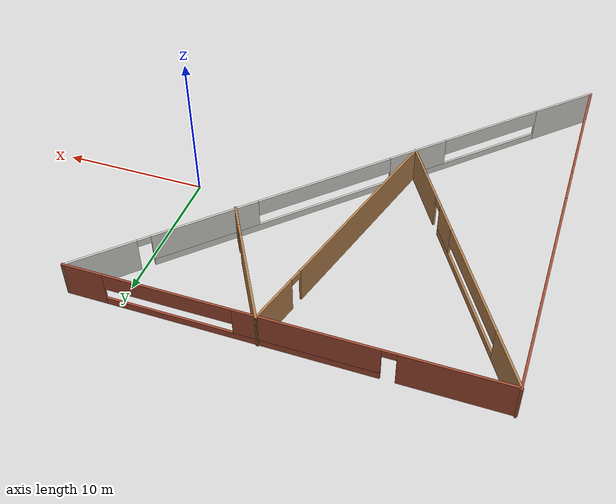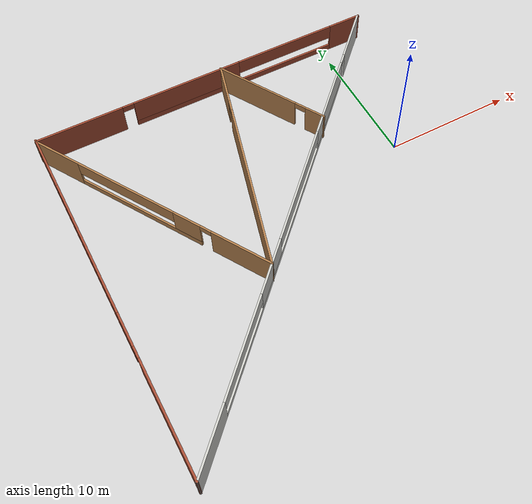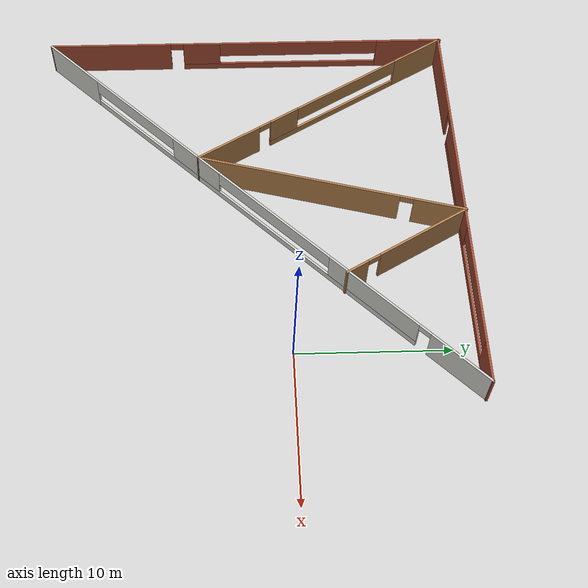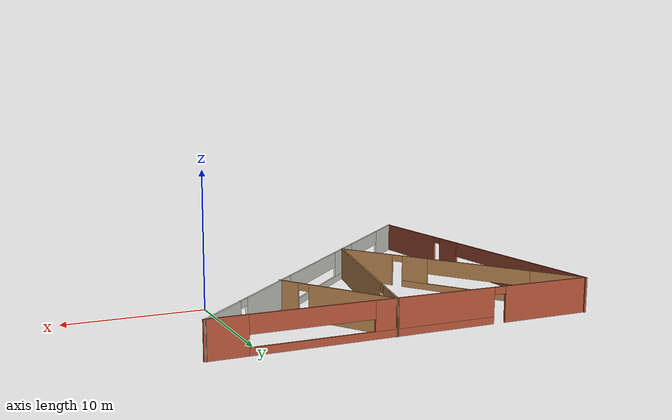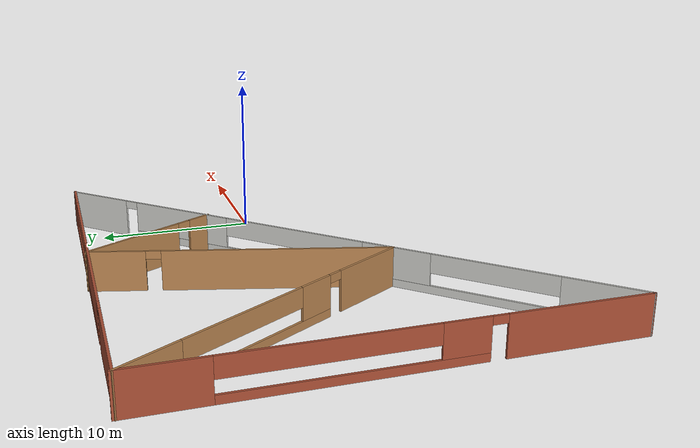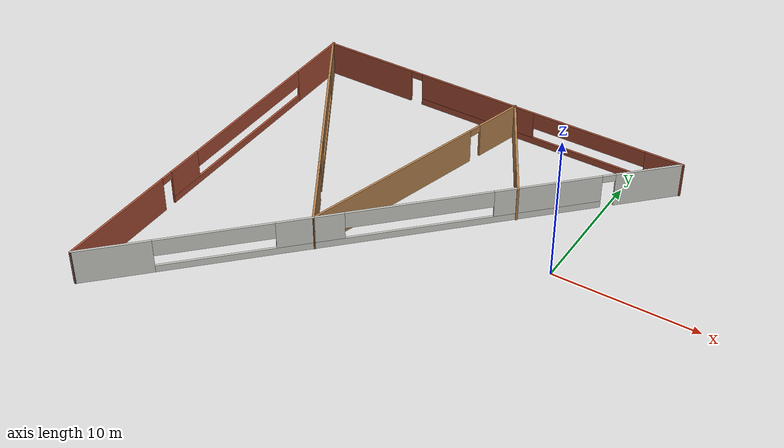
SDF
<?xml version='1.0'?>
<sdf version='1.6'>
  <model name='MyWorld2'>
    <pose frame=''>-10.3803 -2.41529 0 0 -0 0</pose>
    <link name='Wall_0'>
      <pose frame=''>-13.807 0.013017 0 0 0 -1.5708</pose>
      <visual name='Wall_0_Visual_0'>
        <pose frame=''>-11.7947 0 1.25 0 -0 0</pose>
        <geometry>
          <box>
            <size>4.66052 0.15 2.5</size>
          </box>
        </geometry>
        <material>
          <script>
            <uri>file://media/materials/scripts/gazebo.material</uri>
            <name>Gazebo/Bricks</name>
          </script>
          <ambient>1 1 1 1</ambient>
        </material>
        <meta>
          <layer>0</layer>
        </meta>
      </visual>
      <collision name='Wall_0_Collision_0'>
        <geometry>
          <box>
            <size>4.66052 0.15 2.5</size>
          </box>
        </geometry>
        <pose frame=''>-11.7947 0 1.25 0 -0 0</pose>
      </collision>
      <visual name='Wall_0_Visual_1'>
        <pose frame=''>9.80218 0 1.25 0 -0 0</pose>
        <geometry>
          <box>
            <size>8.64565 0.15 2.5</size>
          </box>
        </geometry>
        <material>
          <script>
            <uri>file://media/materials/scripts/gazebo.material</uri>
            <name>Gazebo/Bricks</name>
          </script>
          <ambient>1 1 1 1</ambient>
        </material>
        <meta>
          <layer>0</layer>
        </meta>
      </visual>
      <collision name='Wall_0_Collision_1'>
        <geometry>
          <box>
            <size>8.64565 0.15 2.5</size>
          </box>
        </geometry>
        <pose frame=''>9.80218 0 1.25 0 -0 0</pose>
      </collision>
      <visual name='Wall_0_Visual_2'>
        <pose frame=''>-2.44256 0 0.25 0 -0 0</pose>
        <geometry>
          <box>
            <size>14.0438 0.15 0.5</size>
          </box>
        </geometry>
        <material>
          <script>
            <uri>file://media/materials/scripts/gazebo.material</uri>
            <name>Gazebo/Bricks</name>
          </script>
          <ambient>1 1 1 1</ambient>
        </material>
        <meta>
          <layer>0</layer>
        </meta>
      </visual>
      <collision name='Wall_0_Collision_2'>
        <geometry>
          <box>
            <size>14.0438 0.15 0.5</size>
          </box>
        </geometry>
        <pose frame=''>-2.44256 0 0.25 0 -0 0</pose>
      </collision>
      <visual name='Wall_0_Visual_3'>
        <pose frame=''>3.25063 0 1.5 0 -0 0</pose>
        <geometry>
          <box>
            <size>2.65745 0.15 2</size>
          </box>
        </geometry>
        <material>
          <script>
            <uri>file://media/materials/scripts/gazebo.material</uri>
            <name>Gazebo/Bricks</name>
          </script>
          <ambient>1 1 1 1</ambient>
        </material>
        <meta>
          <layer>0</layer>
        </meta>
      </visual>
      <collision name='Wall_0_Collision_3'>
        <geometry>
          <box>
            <size>2.65745 0.15 2</size>
          </box>
        </geometry>
        <pose frame=''>3.25063 0 1.5 0 -0 0</pose>
      </collision>
      <visual name='Wall_0_Visual_4'>
        <pose frame=''>-3.77129 0 1.9 0 -0 0</pose>
        <geometry>
          <box>
            <size>11.3864 0.15 1.2</size>
          </box>
        </geometry>
        <material>
          <script>
            <uri>file://media/materials/scripts/gazebo.material</uri>
            <name>Gazebo/Bricks</name>
          </script>
          <ambient>1 1 1 1</ambient>
        </material>
        <meta>
          <layer>0</layer>
        </meta>
      </visual>
      <collision name='Wall_0_Collision_4'>
        <geometry>
          <box>
            <size>11.3864 0.15 1.2</size>
          </box>
        </geometry>
        <pose frame=''>-3.77129 0 1.9 0 -0 0</pose>
      </collision>
      <visual name='Wall_0_Visual_5'>
        <pose frame=''>5.02935 0 2.25 0 -0 0</pose>
        <geometry>
          <box>
            <size>0.9 0.15 0.5</size>
          </box>
        </geometry>
        <material>
          <script>
            <uri>file://media/materials/scripts/gazebo.material</uri>
            <name>Gazebo/Bricks</name>
          </script>
          <ambient>1 1 1 1</ambient>
        </material>
        <meta>
          <layer>0</layer>
        </meta>
      </visual>
      <collision name='Wall_0_Collision_5'>
        <geometry>
          <box>
            <size>0.9 0.15 0.5</size>
          </box>
        </geometry>
        <pose frame=''>5.02935 0 2.25 0 -0 0</pose>
      </collision>
    </link>
    <link name='Wall_1'>
      <pose frame=''>-0.013824 -0.036268 0 0 -0 0.792864</pose>
      <visual name='Wall_1_Visual_0'>
        <pose frame=''>-17.2524 0 1.25 0 -0 0</pose>
        <geometry>
          <box>
            <size>4.95291 0.15 2.5</size>
          </box>
        </geometry>
        <material>
          <script>
            <uri>file://media/materials/scripts/gazebo.material</uri>
            <name>Gazebo/CeilingTiled</name>
          </script>
          <ambient>0.435294 0.796078 0.67451 1</ambient>
        </material>
        <meta>
          <layer>0</layer>
        </meta>
      </visual>
      <collision name='Wall_1_Collision_0'>
        <geometry>
          <box>
            <size>4.95291 0.15 2.5</size>
          </box>
        </geometry>
        <pose frame=''>-17.2524 0 1.25 0 -0 0</pose>
      </collision>
      <visual name='Wall_1_Visual_1'>
        <pose frame=''>17.4059 0 1.25 0 -0 0</pose>
        <geometry>
          <box>
            <size>4.64587 0.15 2.5</size>
          </box>
        </geometry>
        <material>
          <script>
            <uri>file://media/materials/scripts/gazebo.material</uri>
            <name>Gazebo/CeilingTiled</name>
          </script>
          <ambient>0.435294 0.796078 0.67451 1</ambient>
        </material>
        <meta>
          <layer>0</layer>
        </meta>
      </visual>
      <collision name='Wall_1_Collision_1'>
        <geometry>
          <box>
            <size>4.64587 0.15 2.5</size>
          </box>
        </geometry>
        <pose frame=''>17.4059 0 1.25 0 -0 0</pose>
      </collision>
      <visual name='Wall_1_Visual_2'>
        <pose frame=''>-0.296479 0 0.25 0 -0 0</pose>
        <geometry>
          <box>
            <size>28.9588 0.15 0.5</size>
          </box>
        </geometry>
        <material>
          <script>
            <uri>file://media/materials/scripts/gazebo.material</uri>
            <name>Gazebo/CeilingTiled</name>
          </script>
          <ambient>0.435294 0.796078 0.67451 1</ambient>
        </material>
        <meta>
          <layer>0</layer>
        </meta>
      </visual>
      <collision name='Wall_1_Collision_2'>
        <geometry>
          <box>
            <size>28.9588 0.15 0.5</size>
          </box>
        </geometry>
        <pose frame=''>-0.296479 0 0.25 0 -0 0</pose>
      </collision>
      <visual name='Wall_1_Visual_3'>
        <pose frame=''>-4.97332 0 1.5 0 -0 0</pose>
        <geometry>
          <box>
            <size>4.38754 0.15 2</size>
          </box>
        </geometry>
        <material>
          <script>
            <uri>file://media/materials/scripts/gazebo.material</uri>
            <name>Gazebo/CeilingTiled</name>
          </script>
          <ambient>0.435294 0.796078 0.67451 1</ambient>
        </material>
        <meta>
          <layer>0</layer>
        </meta>
      </visual>
      <collision name='Wall_1_Collision_3'>
        <geometry>
          <box>
            <size>4.38754 0.15 2</size>
          </box>
        </geometry>
        <pose frame=''>-4.97332 0 1.5 0 -0 0</pose>
      </collision>
      <visual name='Wall_1_Visual_4'>
        <pose frame=''>10.5646 0 1.5 0 -0 0</pose>
        <geometry>
          <box>
            <size>7.23665 0.15 2</size>
          </box>
        </geometry>
        <material>
          <script>
            <uri>file://media/materials/scripts/gazebo.material</uri>
            <name>Gazebo/CeilingTiled</name>
          </script>
          <ambient>0.435294 0.796078 0.67451 1</ambient>
        </material>
        <meta>
          <layer>0</layer>
        </meta>
      </visual>
      <collision name='Wall_1_Collision_4'>
        <geometry>
          <box>
            <size>7.23665 0.15 2</size>
          </box>
        </geometry>
        <pose frame=''>10.5646 0 1.5 0 -0 0</pose>
      </collision>
      <visual name='Wall_1_Visual_5'>
        <pose frame=''>-10.9715 0 1.9 0 -0 0</pose>
        <geometry>
          <box>
            <size>7.60881 0.15 1.2</size>
          </box>
        </geometry>
        <material>
          <script>
            <uri>file://media/materials/scripts/gazebo.material</uri>
            <name>Gazebo/CeilingTiled</name>
          </script>
          <ambient>0.435294 0.796078 0.67451 1</ambient>
        </material>
        <meta>
          <layer>0</layer>
        </meta>
      </visual>
      <collision name='Wall_1_Collision_5'>
        <geometry>
          <box>
            <size>7.60881 0.15 1.2</size>
          </box>
        </geometry>
        <pose frame=''>-10.9715 0 1.9 0 -0 0</pose>
      </collision>
      <visual name='Wall_1_Visual_6'>
        <pose frame=''>2.08337 0 1.9 0 -0 0</pose>
        <geometry>
          <box>
            <size>9.72584 0.15 1.2</size>
          </box>
        </geometry>
        <material>
          <script>
            <uri>file://media/materials/scripts/gazebo.material</uri>
            <name>Gazebo/CeilingTiled</name>
          </script>
          <ambient>0.435294 0.796078 0.67451 1</ambient>
        </material>
        <meta>
          <layer>0</layer>
        </meta>
      </visual>
      <collision name='Wall_1_Collision_6'>
        <geometry>
          <box>
            <size>9.72584 0.15 1.2</size>
          </box>
        </geometry>
        <pose frame=''>2.08337 0 1.9 0 -0 0</pose>
      </collision>
      <visual name='Wall_1_Visual_7'>
        <pose frame=''>14.6329 0 2.25 0 -0 0</pose>
        <geometry>
          <box>
            <size>0.9 0.15 0.5</size>
          </box>
        </geometry>
        <material>
          <script>
            <uri>file://media/materials/scripts/gazebo.material</uri>
            <name>Gazebo/CeilingTiled</name>
          </script>
          <ambient>0.435294 0.796078 0.67451 1</ambient>
        </material>
        <meta>
          <layer>0</layer>
        </meta>
      </visual>
      <collision name='Wall_1_Collision_7'>
        <geometry>
          <box>
            <size>0.9 0.15 0.5</size>
          </box>
        </geometry>
        <pose frame=''>14.6329 0 2.25 0 -0 0</pose>
      </collision>
    </link>
    <link name='Wall_2'>
      <pose frame=''>0.048546 13.9644 0 0 -0 3.14159</pose>
      <visual name='Wall_2_Visual_0'>
        <pose frame=''>-12.4973 0 1.25 0 -0 0</pose>
        <geometry>
          <box>
            <size>2.75531 0.15 2.5</size>
          </box>
        </geometry>
        <material>
          <script>
            <uri>file://media/materials/scripts/gazebo.material</uri>
            <name>Gazebo/Bricks</name>
          </script>
          <ambient>1 1 1 1</ambient>
        </material>
        <meta>
          <layer>0</layer>
        </meta>
      </visual>
      <collision name='Wall_2_Collision_0'>
        <geometry>
          <box>
            <size>2.75531 0.15 2.5</size>
          </box>
        </geometry>
        <pose frame=''>-12.4973 0 1.25 0 -0 0</pose>
      </collision>
      <visual name='Wall_2_Visual_1'>
        <pose frame=''>10.4551 0 1.25 0 -0 0</pose>
        <geometry>
          <box>
            <size>6.83979 0.15 2.5</size>
          </box>
        </geometry>
        <material>
          <script>
            <uri>file://media/materials/scripts/gazebo.material</uri>
            <name>Gazebo/Bricks</name>
          </script>
          <ambient>1 1 1 1</ambient>
        </material>
        <meta>
          <layer>0</layer>
        </meta>
      </visual>
      <collision name='Wall_2_Collision_1'>
        <geometry>
          <box>
            <size>6.83979 0.15 2.5</size>
          </box>
        </geometry>
        <pose frame=''>10.4551 0 1.25 0 -0 0</pose>
      </collision>
      <visual name='Wall_2_Visual_2'>
        <pose frame=''>-2.49224 0 0.25 0 -0 0</pose>
        <geometry>
          <box>
            <size>17.2549 0.15 0.5</size>
          </box>
        </geometry>
        <material>
          <script>
            <uri>file://media/materials/scripts/gazebo.material</uri>
            <name>Gazebo/Bricks</name>
          </script>
          <ambient>1 1 1 1</ambient>
        </material>
        <meta>
          <layer>0</layer>
        </meta>
      </visual>
      <collision name='Wall_2_Collision_2'>
        <geometry>
          <box>
            <size>17.2549 0.15 0.5</size>
          </box>
        </geometry>
        <pose frame=''>-2.49224 0 0.25 0 -0 0</pose>
      </collision>
      <visual name='Wall_2_Visual_3'>
        <pose frame=''>1.66145 0 1.5 0 -0 0</pose>
        <geometry>
          <box>
            <size>8.94753 0.15 2</size>
          </box>
        </geometry>
        <material>
          <script>
            <uri>file://media/materials/scripts/gazebo.material</uri>
            <name>Gazebo/Bricks</name>
          </script>
          <ambient>1 1 1 1</ambient>
        </material>
        <meta>
          <layer>0</layer>
        </meta>
      </visual>
      <collision name='Wall_2_Collision_3'>
        <geometry>
          <box>
            <size>8.94753 0.15 2</size>
          </box>
        </geometry>
        <pose frame=''>1.66145 0 1.5 0 -0 0</pose>
      </collision>
      <visual name='Wall_2_Visual_4'>
        <pose frame=''>-6.966 0 1.9 0 -0 0</pose>
        <geometry>
          <box>
            <size>8.30738 0.15 1.2</size>
          </box>
        </geometry>
        <material>
          <script>
            <uri>file://media/materials/scripts/gazebo.material</uri>
            <name>Gazebo/Bricks</name>
          </script>
          <ambient>1 1 1 1</ambient>
        </material>
        <meta>
          <layer>0</layer>
        </meta>
      </visual>
      <collision name='Wall_2_Collision_4'>
        <geometry>
          <box>
            <size>8.30738 0.15 1.2</size>
          </box>
        </geometry>
        <pose frame=''>-6.966 0 1.9 0 -0 0</pose>
      </collision>
      <visual name='Wall_2_Visual_5'>
        <pose frame=''>6.58521 0 2.25 0 -0 0</pose>
        <geometry>
          <box>
            <size>0.9 0.15 0.5</size>
          </box>
        </geometry>
        <material>
          <script>
            <uri>file://media/materials/scripts/gazebo.material</uri>
            <name>Gazebo/Bricks</name>
          </script>
          <ambient>1 1 1 1</ambient>
        </material>
        <meta>
          <layer>0</layer>
        </meta>
      </visual>
      <collision name='Wall_2_Collision_5'>
        <geometry>
          <box>
            <size>0.9 0.15 0.5</size>
          </box>
        </geometry>
        <pose frame=''>6.58521 0 2.25 0 -0 0</pose>
      </collision>
    </link>
    <link name='Wall_3'>
      <pose frame=''>-8.58811 5.26089 0 0 0 -1.0295</pose>
      <visual name='Wall_3_Visual_0'>
        <pose frame=''>-8.21848 0 1.25 0 -0 0</pose>
        <geometry>
          <box>
            <size>4.02374 0.15 2.5</size>
          </box>
        </geometry>
        <material>
          <script>
            <uri>file://media/materials/scripts/gazebo.material</uri>
            <name>Gazebo/Wood</name>
          </script>
          <ambient>1 1 1 1</ambient>
        </material>
        <meta>
          <layer>0</layer>
        </meta>
      </visual>
      <collision name='Wall_3_Collision_0'>
        <geometry>
          <box>
            <size>4.02374 0.15 2.5</size>
          </box>
        </geometry>
        <pose frame=''>-8.21848 0 1.25 0 -0 0</pose>
      </collision>
      <visual name='Wall_3_Visual_1'>
        <pose frame=''>7.75372 0 1.25 0 -0 0</pose>
        <geometry>
          <box>
            <size>4.95326 0.15 2.5</size>
          </box>
        </geometry>
        <material>
          <script>
            <uri>file://media/materials/scripts/gazebo.material</uri>
            <name>Gazebo/Wood</name>
          </script>
          <ambient>1 1 1 1</ambient>
        </material>
        <meta>
          <layer>0</layer>
        </meta>
      </visual>
      <collision name='Wall_3_Collision_1'>
        <geometry>
          <box>
            <size>4.95326 0.15 2.5</size>
          </box>
        </geometry>
        <pose frame=''>7.75372 0 1.25 0 -0 0</pose>
      </collision>
      <visual name='Wall_3_Visual_2'>
        <pose frame=''>-0.914764 0 0.25 0 -0 0</pose>
        <geometry>
          <box>
            <size>10.5837 0.15 0.5</size>
          </box>
        </geometry>
        <material>
          <script>
            <uri>file://media/materials/scripts/gazebo.material</uri>
            <name>Gazebo/Wood</name>
          </script>
          <ambient>1 1 1 1</ambient>
        </material>
        <meta>
          <layer>0</layer>
        </meta>
      </visual>
      <collision name='Wall_3_Collision_2'>
        <geometry>
          <box>
            <size>10.5837 0.15 0.5</size>
          </box>
        </geometry>
        <pose frame=''>-0.914764 0 0.25 0 -0 0</pose>
      </collision>
      <visual name='Wall_3_Visual_3'>
        <pose frame=''>3.25015 0 1.5 0 -0 0</pose>
        <geometry>
          <box>
            <size>2.25387 0.15 2</size>
          </box>
        </geometry>
        <material>
          <script>
            <uri>file://media/materials/scripts/gazebo.material</uri>
            <name>Gazebo/Wood</name>
          </script>
          <ambient>1 1 1 1</ambient>
        </material>
        <meta>
          <layer>0</layer>
        </meta>
      </visual>
      <collision name='Wall_3_Collision_3'>
        <geometry>
          <box>
            <size>2.25387 0.15 2</size>
          </box>
        </geometry>
        <pose frame=''>3.25015 0 1.5 0 -0 0</pose>
      </collision>
      <visual name='Wall_3_Visual_4'>
        <pose frame=''>-2.0417 0 1.9 0 -0 0</pose>
        <geometry>
          <box>
            <size>8.32983 0.15 1.2</size>
          </box>
        </geometry>
        <material>
          <script>
            <uri>file://media/materials/scripts/gazebo.material</uri>
            <name>Gazebo/Wood</name>
          </script>
          <ambient>1 1 1 1</ambient>
        </material>
        <meta>
          <layer>0</layer>
        </meta>
      </visual>
      <collision name='Wall_3_Collision_4'>
        <geometry>
          <box>
            <size>8.32983 0.15 1.2</size>
          </box>
        </geometry>
        <pose frame=''>-2.0417 0 1.9 0 -0 0</pose>
      </collision>
      <visual name='Wall_3_Visual_5'>
        <pose frame=''>4.82709 0 2.25 0 -0 0</pose>
        <geometry>
          <box>
            <size>0.9 0.15 0.5</size>
          </box>
        </geometry>
        <material>
          <script>
            <uri>file://media/materials/scripts/gazebo.material</uri>
            <name>Gazebo/Wood</name>
          </script>
          <ambient>1 1 1 1</ambient>
        </material>
        <meta>
          <layer>0</layer>
        </meta>
      </visual>
      <collision name='Wall_3_Collision_5'>
        <geometry>
          <box>
            <size>0.9 0.15 0.5</size>
          </box>
        </geometry>
        <pose frame=''>4.82709 0 2.25 0 -0 0</pose>
      </collision>
    </link>
    <link name='Wall_4'>
      <pose frame=''>-1.01328 5.29896 0 0 -0 1.309</pose>
      <visual name='Wall_4_Visual_0'>
        <pose frame=''>-2.21471 0 1.25 0 -0 0</pose>
        <geometry>
          <box>
            <size>13.8206 0.15 2.5</size>
          </box>
        </geometry>
        <material>
          <script>
            <uri>file://media/materials/scripts/gazebo.material</uri>
            <name>Gazebo/Wood</name>
          </script>
          <ambient>1 1 1 1</ambient>
        </material>
        <meta>
          <layer>0</layer>
        </meta>
      </visual>
      <collision name='Wall_4_Collision_0'>
        <geometry>
          <box>
            <size>13.8206 0.15 2.5</size>
          </box>
        </geometry>
        <pose frame=''>-2.21471 0 1.25 0 -0 0</pose>
      </collision>
      <visual name='Wall_4_Visual_1'>
        <pose frame=''>7.36029 0 1.25 0 -0 0</pose>
        <geometry>
          <box>
            <size>3.52942 0.15 2.5</size>
          </box>
        </geometry>
        <material>
          <script>
            <uri>file://media/materials/scripts/gazebo.material</uri>
            <name>Gazebo/Wood</name>
          </script>
          <ambient>1 1 1 1</ambient>
        </material>
        <meta>
          <layer>0</layer>
        </meta>
      </visual>
      <collision name='Wall_4_Collision_1'>
        <geometry>
          <box>
            <size>3.52942 0.15 2.5</size>
          </box>
        </geometry>
        <pose frame=''>7.36029 0 1.25 0 -0 0</pose>
      </collision>
      <visual name='Wall_4_Visual_2'>
        <pose frame=''>5.14558 0 2.25 0 -0 0</pose>
        <geometry>
          <box>
            <size>0.9 0.15 0.5</size>
          </box>
        </geometry>
        <material>
          <script>
            <uri>file://media/materials/scripts/gazebo.material</uri>
            <name>Gazebo/Wood</name>
          </script>
          <ambient>1 1 1 1</ambient>
        </material>
        <meta>
          <layer>0</layer>
        </meta>
      </visual>
      <collision name='Wall_4_Collision_2'>
        <geometry>
          <box>
            <size>0.9 0.15 0.5</size>
          </box>
        </geometry>
        <pose frame=''>5.14558 0 2.25 0 -0 0</pose>
      </collision>
    </link>
    <link name='Wall_5'>
      <pose frame=''>3.66653 9.99192 0 0 0 -1.0472</pose>
      <visual name='Wall_5_Visual_0'>
        <pose frame=''>-1.28766 0 1.25 0 -0 0</pose>
        <geometry>
          <box>
            <size>6.92468 0.15 2.5</size>
          </box>
        </geometry>
        <material>
          <script>
            <uri>file://media/materials/scripts/gazebo.material</uri>
            <name>Gazebo/Wood</name>
          </script>
          <ambient>1 1 1 1</ambient>
        </material>
        <meta>
          <layer>0</layer>
        </meta>
      </visual>
      <collision name='Wall_5_Collision_0'>
        <geometry>
          <box>
            <size>6.92468 0.15 2.5</size>
          </box>
        </geometry>
        <pose frame=''>-1.28766 0 1.25 0 -0 0</pose>
      </collision>
      <visual name='Wall_5_Visual_1'>
        <pose frame=''>3.91234 0 1.25 0 -0 0</pose>
        <geometry>
          <box>
            <size>1.67532 0.15 2.5</size>
          </box>
        </geometry>
        <material>
          <script>
            <uri>file://media/materials/scripts/gazebo.material</uri>
            <name>Gazebo/Wood</name>
          </script>
          <ambient>1 1 1 1</ambient>
        </material>
        <meta>
          <layer>0</layer>
        </meta>
      </visual>
      <collision name='Wall_5_Collision_1'>
        <geometry>
          <box>
            <size>1.67532 0.15 2.5</size>
          </box>
        </geometry>
        <pose frame=''>3.91234 0 1.25 0 -0 0</pose>
      </collision>
      <visual name='Wall_5_Visual_2'>
        <pose frame=''>2.62468 0 2.25 0 -0 0</pose>
        <geometry>
          <box>
            <size>0.9 0.15 0.5</size>
          </box>
        </geometry>
        <material>
          <script>
            <uri>file://media/materials/scripts/gazebo.material</uri>
            <name>Gazebo/Wood</name>
          </script>
          <ambient>1 1 1 1</ambient>
        </material>
        <meta>
          <layer>0</layer>
        </meta>
      </visual>
      <collision name='Wall_5_Collision_2'>
        <geometry>
          <box>
            <size>0.9 0.15 0.5</size>
          </box>
        </geometry>
        <pose frame=''>2.62468 0 2.25 0 -0 0</pose>
      </collision>
    </link>
    <static>1</static>
  </model>
</sdf>
